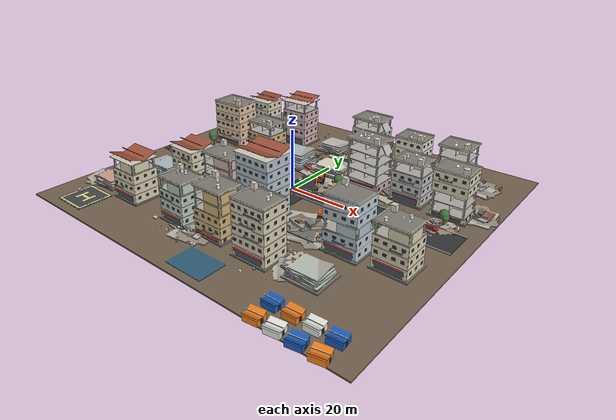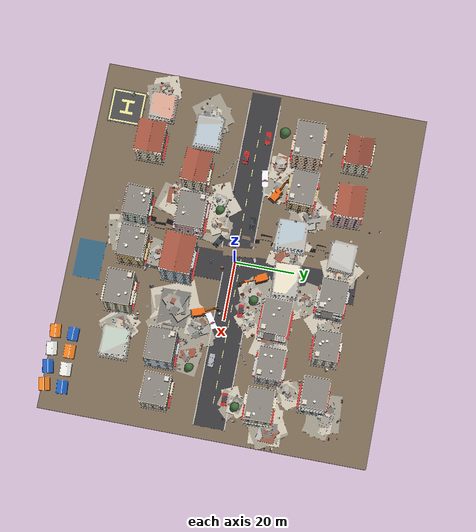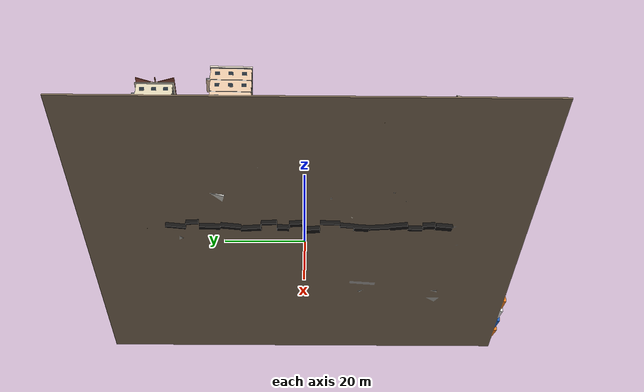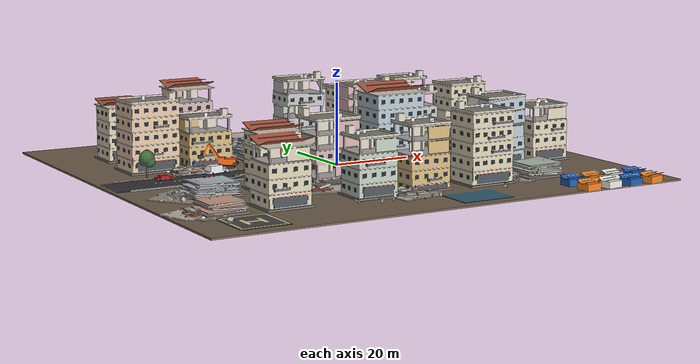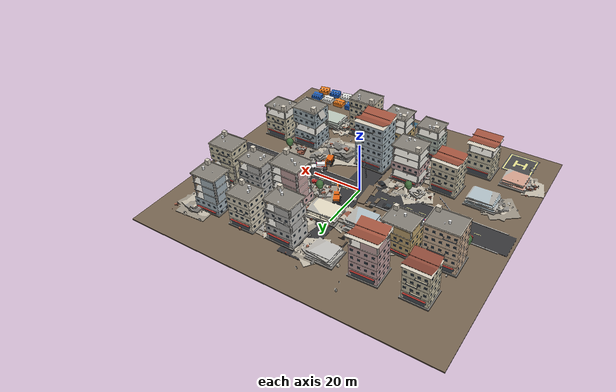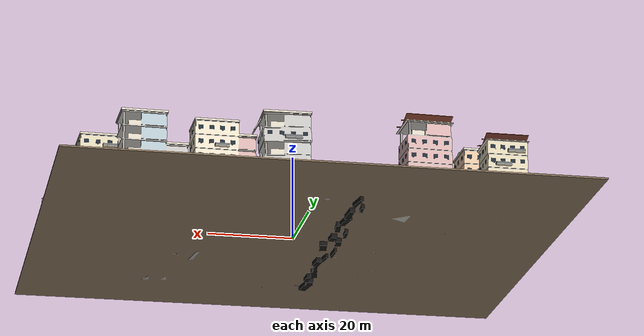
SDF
<?xml version="1.0"?>
<sdf version="1.7">
  <model name="disaster_city">
    <static>true</static>
    <link name="body">
      <visual name="v">
        <geometry><mesh><uri>model://disaster_city/meshes/mesh.dae</uri></mesh></geometry>
      </visual>
    </link>
  </model>
</sdf>
